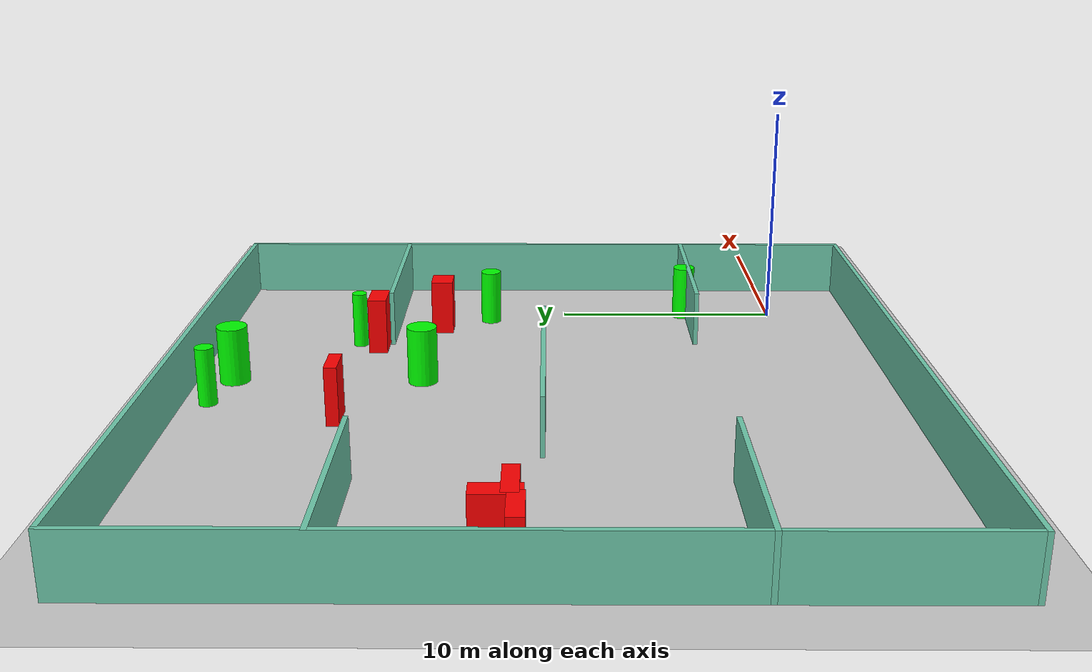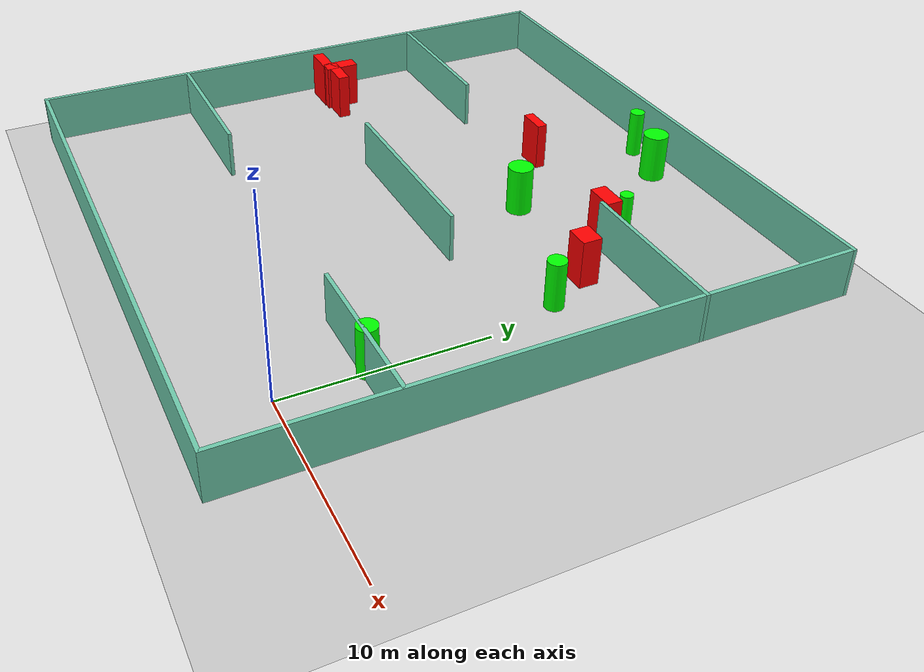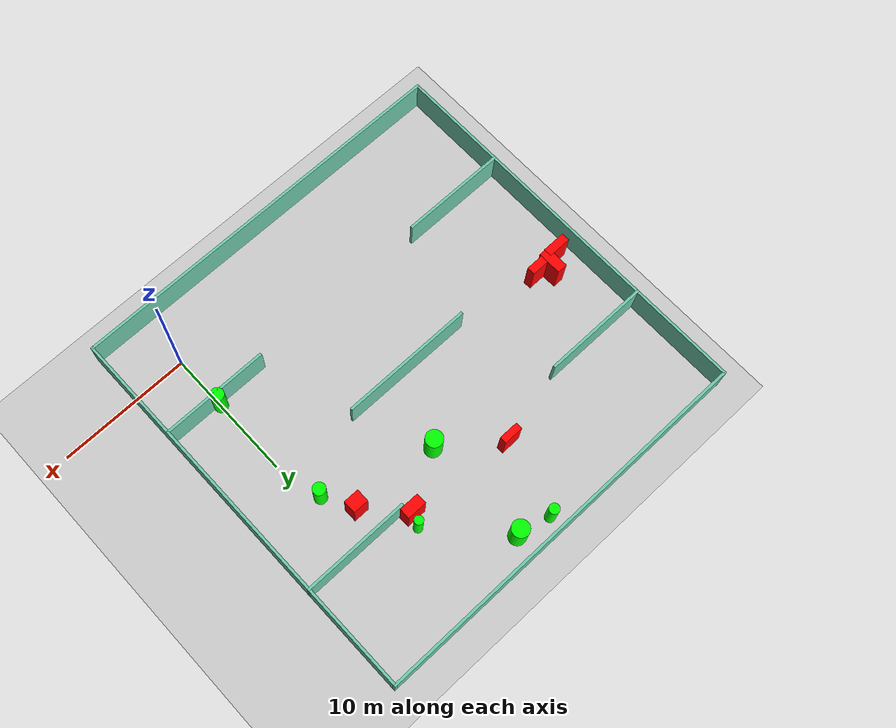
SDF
<sdf version="1.7">
 <world name="default">
  <light name="sun" type="directional">
   <pose>0 0 10 0 -0 0</pose>
   <diffuse>0.8 0.8 0.8 1</diffuse>
   <specular>0.2 0.2 0.2 1</specular>
   <attenuation>
    <range>1000</range>
    <constant>0.9</constant>
    <linear>0.01</linear>
    <quadratic>0.001</quadratic>
   </attenuation>
   <direction>-0.5 0.1 -0.9</direction>
   <spot><inner_angle>0</inner_angle><outer_angle>0</outer_angle><falloff>0</falloff></spot>
  </light>
  <model name="ground_plane">
   <static>1</static>
   <link name="link">
    <collision name="collision">
     <geometry><plane><normal>0 0 1</normal><size>100 100</size></plane></geometry>
     <surface>
      <contact><collide_bitmask>65535</collide_bitmask></contact>
      <friction><ode><mu>100</mu><mu2>50</mu2></ode></friction>
     </surface>
    </collision>
    <visual name="visual">
     <cast_shadows>0</cast_shadows>
     <geometry><plane><normal>0 0 1</normal><size>100 100</size></plane></geometry>
     <material>
      <script><uri>file://media/materials/scripts/gazebo.material</uri><name>Gazebo/Grey</name></script>
     </material>
    </visual>
   </link>
  </model>
  <gravity>0 0 -9.8</gravity>
  <magnetic_field>6e-06 2.3e-05 -4.2e-05</magnetic_field>
  <atmosphere type="adiabatic"/>
  <physics type="ode">
   <max_step_size>0.001</max_step_size>
   <real_time_factor>1</real_time_factor>
   <real_time_update_rate>1000</real_time_update_rate>
  </physics>
  <scene><ambient>0.4 0.4 0.4 1</ambient><background>0.7 0.7 0.7 1</background><shadows>1</shadows></scene>
  <spherical_coordinates>
   <surface_model>EARTH_WGS84</surface_model>
   <latitude_deg>0</latitude_deg>
   <longitude_deg>0</longitude_deg>
   <elevation>0</elevation>
   <heading_deg>0</heading_deg>
  </spherical_coordinates>
  <model name="my_base_walls">
   <link name="Wall_10">
    <collision name="Wall_10_Collision">
     <geometry><box><size>8.2 0.2 2.5</size></box></geometry>
     <pose>0 0 1.25 0 -0 0</pose>
    </collision>
    <visual name="Wall_10_Visual">
     <pose>0 0 1.25 0 -0 0</pose>
     <geometry><box><size>8.2 0.2 2.5</size></box></geometry>
     <material>
      <script><uri>file://media/materials/scripts/gazebo.material</uri><name>Gazebo/Grey</name></script>
      <ambient>0.435294 0.796078 0.67451 1</ambient>
     </material>
     <meta><layer>0</layer></meta>
    </visual>
    <pose>-11 -7 0 0 -0 0</pose>
   </link>
   <link name="Wall_12">
    <collision name="Wall_12_Collision">
     <geometry><box><size>8.2 0.2 2.5</size></box></geometry>
     <pose>0 0 1.25 0 -0 0</pose>
    </collision>
    <visual name="Wall_12_Visual">
     <pose>0 0 1.25 0 -0 0</pose>
     <geometry><box><size>8.2 0.2 2.5</size></box></geometry>
     <material>
      <script><uri>file://media/materials/scripts/gazebo.material</uri><name>Gazebo/Grey</name></script>
      <ambient>0.435294 0.796078 0.67451 1</ambient>
     </material>
     <meta><layer>0</layer></meta>
    </visual>
    <pose>-11 7 0 0 -0 0</pose>
   </link>
   <link name="Wall_14">
    <collision name="Wall_14_Collision">
     <geometry><box><size>8.2 0.2 2.5</size></box></geometry>
     <pose>0 0 1.25 0 -0 0</pose>
    </collision>
    <visual name="Wall_14_Visual">
     <pose>0 0 1.25 0 -0 0</pose>
     <geometry><box><size>8.2 0.2 2.5</size></box></geometry>
     <material>
      <script><uri>file://media/materials/scripts/gazebo.material</uri><name>Gazebo/Grey</name></script>
      <ambient>0.435294 0.796078 0.67451 1</ambient>
     </material>
     <meta><layer>0</layer></meta>
    </visual>
    <pose>11 7 0 0 -0 3.14159</pose>
   </link>
   <link name="Wall_16">
    <collision name="Wall_16_Collision">
     <geometry><box><size>10.2 0.2 2.5</size></box></geometry>
     <pose>0 0 1.25 0 -0 0</pose>
    </collision>
    <visual name="Wall_16_Visual">
     <pose>0 0 1.25 0 -0 0</pose>
     <geometry><box><size>10.2 0.2 2.5</size></box></geometry>
     <material>
      <script><uri>file://media/materials/scripts/gazebo.material</uri><name>Gazebo/Grey</name></script>
      <ambient>0.435294 0.796078 0.67451 1</ambient>
     </material>
     <meta><layer>0</layer></meta>
    </visual>
    <pose>0 0 0 0 -0 3.14159</pose>
   </link>
   <link name="Wall_2">
    <collision name="Wall_2_Collision">
     <geometry><box><size>30.2 0.2 2.5</size></box></geometry>
     <pose>0 0 1.25 0 -0 0</pose>
    </collision>
    <visual name="Wall_2_Visual">
     <pose>0 0 1.25 0 -0 0</pose>
     <geometry><box><size>30.2 0.2 2.5</size></box></geometry>
     <material>
      <script><uri>file://media/materials/scripts/gazebo.material</uri><name>Gazebo/Grey</name></script>
      <ambient>0.435294 0.796078 0.67451 1</ambient>
     </material>
     <meta><layer>0</layer></meta>
    </visual>
    <pose>0 -15 0 0 -0 3.14159</pose>
   </link>
   <link name="Wall_3">
    <collision name="Wall_3_Collision">
     <geometry><box><size>30.2 0.2 2.5</size></box></geometry>
     <pose>0 0 1.25 0 -0 0</pose>
    </collision>
    <visual name="Wall_3_Visual">
     <pose>0 0 1.25 0 -0 0</pose>
     <geometry><box><size>30.2 0.2 2.5</size></box></geometry>
     <material>
      <script><uri>file://media/materials/scripts/gazebo.material</uri><name>Gazebo/Grey</name></script>
      <ambient>0.435294 0.796078 0.67451 1</ambient>
     </material>
     <meta><layer>0</layer></meta>
    </visual>
    <pose>-15 0 0 0 -0 1.5708</pose>
   </link>
   <link name="Wall_4">
    <collision name="Wall_4_Collision">
     <geometry><box><size>30.2 0.2 2.5</size></box></geometry>
     <pose>0 0 1.25 0 -0 0</pose>
    </collision>
    <visual name="Wall_4_Visual">
     <pose>0 0 1.25 0 -0 0</pose>
     <geometry><box><size>30.2 0.2 2.5</size></box></geometry>
     <material>
      <script><uri>file://media/materials/scripts/gazebo.material</uri><name>Gazebo/Grey</name></script>
      <ambient>0.435294 0.796078 0.67451 1</ambient>
     </material>
     <meta><layer>0</layer></meta>
    </visual>
    <pose>0 15 0 0 -0 0</pose>
   </link>
   <link name="Wall_6">
    <collision name="Wall_6_Collision">
     <geometry><box><size>30.2 0.2 2.5</size></box></geometry>
     <pose>0 0 1.25 0 -0 0</pose>
    </collision>
    <visual name="Wall_6_Visual">
     <pose>0 0 1.25 0 -0 0</pose>
     <geometry><box><size>30.2 0.2 2.5</size></box></geometry>
     <material>
      <script><uri>file://media/materials/scripts/gazebo.material</uri><name>Gazebo/Grey</name></script>
      <ambient>0.435294 0.796078 0.67451 1</ambient>
     </material>
     <meta><layer>0</layer></meta>
    </visual>
    <pose>15 0 0 0 -0 1.5708</pose>
   </link>
   <link name="Wall_8">
    <collision name="Wall_8_Collision">
     <geometry><box><size>8.2 0.2 2.5</size></box></geometry>
     <pose>0 0 1.25 0 -0 0</pose>
    </collision>
    <visual name="Wall_8_Visual">
     <pose>0 0 1.25 0 -0 0</pose>
     <geometry><box><size>8.2 0.2 2.5</size></box></geometry>
     <material>
      <script><uri>file://media/materials/scripts/gazebo.material</uri><name>Gazebo/Grey</name></script>
      <ambient>0.435294 0.796078 0.67451 1</ambient>
     </material>
     <meta><layer>0</layer></meta>
    </visual>
    <pose>11 -7 0 0 -0 3.14159</pose>
   </link>
   <static>1</static>
   <pose>-11 11 0 0 -0 0</pose>
  </model>
  <model name="cylinder1">
   <static>1</static>
   <link name="link">
    <inertial>
     <mass>1</mass>
     <inertia><ixx>0.5</ixx><ixy>0</ixy><ixz>0</ixz><iyy>0.5</iyy><iyz>0</iyz><izz>1</izz></inertia>
    </inertial>
    <collision name="collision">
     <geometry><cylinder><radius>0.3835383664872385</radius><length>2.5</length></cylinder></geometry>
    </collision>
    <visual name="visual">
     <geometry><cylinder><radius>0.3835383664872385</radius><length>2.5</length></cylinder></geometry>
     <material>
      <ambient>0 1 0 1</ambient>
      <diffuse>0 1 0 1</diffuse>
      <specular>0.1 0.1 0.1 1</specular>
      <emissive>0 0 0 0</emissive>
     </material>
    </visual>
   </link>
   <pose>-11.053012367505957 24.831752047977997 1.25 0 0 0</pose>
  </model>
  <model name="cylinder2">
   <static>1</static>
   <link name="link">
    <inertial>
     <mass>1</mass>
     <inertia><ixx>0.5</ixx><ixy>0</ixy><ixz>0</ixz><iyy>0.5</iyy><iyz>0</iyz><izz>1</izz></inertia>
    </inertial>
    <collision name="collision">
     <geometry><cylinder><radius>0.46906239113513826</radius><length>2.5</length></cylinder></geometry>
    </collision>
    <visual name="visual">
     <geometry><cylinder><radius>0.46906239113513826</radius><length>2.5</length></cylinder></geometry>
     <material>
      <ambient>0 1 0 1</ambient>
      <diffuse>0 1 0 1</diffuse>
      <specular>0.1 0.1 0.1 1</specular>
      <emissive>0 0 0 0</emissive>
     </material>
    </visual>
   </link>
   <pose>-0.778890654105993 13.587081472727593 1.25 0 0 0</pose>
  </model>
  <model name="cylinder3">
   <static>1</static>
   <link name="link">
    <inertial>
     <mass>1</mass>
     <inertia><ixx>0.5</ixx><ixy>0</ixy><ixz>0</ixz><iyy>0.5</iyy><iyz>0</iyz><izz>1</izz></inertia>
    </inertial>
    <collision name="collision">
     <geometry><cylinder><radius>0.3315334234077897</radius><length>2.5</length></cylinder></geometry>
    </collision>
    <visual name="visual">
     <geometry><cylinder><radius>0.3315334234077897</radius><length>2.5</length></cylinder></geometry>
     <material>
      <ambient>0 1 0 1</ambient>
      <diffuse>0 1 0 1</diffuse>
      <specular>0.1 0.1 0.1 1</specular>
      <emissive>0 0 0 0</emissive>
     </material>
    </visual>
   </link>
   <pose>-4.121655644753989 19.470945972269973 1.25 0 0 0</pose>
  </model>
  <model name="cylinder4">
   <static>1</static>
   <link name="link">
    <inertial>
     <mass>1</mass>
     <inertia><ixx>0.5</ixx><ixy>0</ixy><ixz>0</ixz><iyy>0.5</iyy><iyz>0</iyz><izz>1</izz></inertia>
    </inertial>
    <collision name="collision">
     <geometry><cylinder><radius>0.5039261697235827</radius><length>2.5</length></cylinder></geometry>
    </collision>
    <visual name="visual">
     <geometry><cylinder><radius>0.5039261697235827</radius><length>2.5</length></cylinder></geometry>
     <material>
      <ambient>0 1 0 1</ambient>
      <diffuse>0 1 0 1</diffuse>
      <specular>0.1 0.1 0.1 1</specular>
      <emissive>0 0 0 0</emissive>
     </material>
    </visual>
   </link>
   <pose>-0.05069540430286068 4.1920841065038745 1.25 0 0 0</pose>
  </model>
  <model name="cylinder5">
   <static>1</static>
   <link name="link">
    <inertial>
     <mass>1</mass>
     <inertia><ixx>0.5</ixx><ixy>0</ixy><ixz>0</ixz><iyy>0.5</iyy><iyz>0</iyz><izz>1</izz></inertia>
    </inertial>
    <collision name="collision">
     <geometry><cylinder><radius>0.646880387973763</radius><length>2.5</length></cylinder></geometry>
    </collision>
    <visual name="visual">
     <geometry><cylinder><radius>0.646880387973763</radius><length>2.5</length></cylinder></geometry>
     <material>
      <ambient>0 1 0 1</ambient>
      <diffuse>0 1 0 1</diffuse>
      <specular>0.1 0.1 0.1 1</specular>
      <emissive>0 0 0 0</emissive>
     </material>
    </visual>
   </link>
   <pose>-8.558299794164784 24.288583122318077 1.25 0 0 0</pose>
  </model>
  <model name="cylinder6">
   <static>1</static>
   <link name="link">
    <inertial>
     <mass>1</mass>
     <inertia><ixx>0.5</ixx><ixy>0</ixy><ixz>0</ixz><iyy>0.5</iyy><iyz>0</iyz><izz>1</izz></inertia>
    </inertial>
    <collision name="collision">
     <geometry><cylinder><radius>0.6411375692822873</radius><length>2.5</length></cylinder></geometry>
    </collision>
    <visual name="visual">
     <geometry><cylinder><radius>0.6411375692822873</radius><length>2.5</length></cylinder></geometry>
     <material>
      <ambient>0 1 0 1</ambient>
      <diffuse>0 1 0 1</diffuse>
      <specular>0.1 0.1 0.1 1</specular>
      <emissive>0 0 0 0</emissive>
     </material>
    </visual>
   </link>
   <pose>-8.586902332414251 16.186902800795405 1.25 0 0 0</pose>
  </model>
  <model name="box1">
   <static>1</static>
   <link name="link">
    <inertial>
     <mass>1</mass>
     <inertia><ixx>0.083</ixx><ixy>0</ixy><ixz>0</ixz><iyy>0.083</iyy><iyz>0</iyz><izz>0.083</izz></inertia>
    </inertial>
    <collision name="collision">
     <geometry><box><size>1.4848970300193989 0.5250060736917984 2.5</size></box></geometry>
    </collision>
    <visual name="visual">
     <geometry><box><size>1.4848970300193989 0.5250060736917984 2.5</size></box></geometry>
     <material>
      <ambient>1 0 0 1</ambient>
      <diffuse>1 0 0 1</diffuse>
      <specular>0.1 0.1 0.1 1</specular>
      <emissive>0 0 0 0</emissive>
     </material>
    </visual>
    <sensor name="my_contact" type="contact">
     <contact><collision>box_collision</collision><topic>__default_topic__</topic></contact>
    </sensor>
   </link>
   <pose>-12.558413106659206 19.33062075674702 1.25 0 0 0</pose>
  </model>
  <model name="box2">
   <static>1</static>
   <link name="link">
    <inertial>
     <mass>1</mass>
     <inertia><ixx>0.083</ixx><ixy>0</ixy><ixz>0</ixz><iyy>0.083</iyy><iyz>0</iyz><izz>0.083</izz></inertia>
    </inertial>
    <collision name="collision">
     <geometry><box><size>1.1828384677085728 0.9930279874704276 2.5</size></box></geometry>
    </collision>
    <visual name="visual">
     <geometry><box><size>1.1828384677085728 0.9930279874704276 2.5</size></box></geometry>
     <material>
      <ambient>1 0 0 1</ambient>
      <diffuse>1 0 0 1</diffuse>
      <specular>0.1 0.1 0.1 1</specular>
      <emissive>0 0 0 0</emissive>
     </material>
    </visual>
    <sensor name="my_contact" type="contact">
     <contact><collision>box_collision</collision><topic>__default_topic__</topic></contact>
    </sensor>
   </link>
   <pose>-1.988680331280836 15.81667161827842 1.25 0 0 0</pose>
  </model>
  <model name="box3">
   <static>1</static>
   <link name="link">
    <inertial>
     <mass>1</mass>
     <inertia><ixx>0.083</ixx><ixy>0</ixy><ixz>0</ixz><iyy>0.083</iyy><iyz>0</iyz><izz>0.083</izz></inertia>
    </inertial>
    <collision name="collision">
     <geometry><box><size>2.00974110563259 0.611263426648955 2.5</size></box></geometry>
    </collision>
    <visual name="visual">
     <geometry><box><size>2.00974110563259 0.611263426648955 2.5</size></box></geometry>
     <material>
      <ambient>1 0 0 1</ambient>
      <diffuse>1 0 0 1</diffuse>
      <specular>0.1 0.1 0.1 1</specular>
      <emissive>0 0 0 0</emissive>
     </material>
    </visual>
    <sensor name="my_contact" type="contact">
     <contact><collision>box_collision</collision><topic>__default_topic__</topic></contact>
    </sensor>
   </link>
   <pose>-22.700217479525076 11.991815534056219 1.25 0 0 0</pose>
  </model>
  <model name="box4">
   <static>1</static>
   <link name="link">
    <inertial>
     <mass>1</mass>
     <inertia><ixx>0.083</ixx><ixy>0</ixy><ixz>0</ixz><iyy>0.083</iyy><iyz>0</iyz><izz>0.083</izz></inertia>
    </inertial>
    <collision name="collision">
     <geometry><box><size>1.51473176539593 0.8255819703817351 2.5</size></box></geometry>
    </collision>
    <visual name="visual">
     <geometry><box><size>1.51473176539593 0.8255819703817351 2.5</size></box></geometry>
     <material>
      <ambient>1 0 0 1</ambient>
      <diffuse>1 0 0 1</diffuse>
      <specular>0.1 0.1 0.1 1</specular>
      <emissive>0 0 0 0</emissive>
     </material>
    </visual>
    <sensor name="my_contact" type="contact">
     <contact><collision>box_collision</collision><topic>__default_topic__</topic></contact>
    </sensor>
   </link>
   <pose>-4.475028559520524 18.54191988997635 1.25 0 0 0</pose>
  </model>
  <model name="box5">
   <static>1</static>
   <link name="link">
    <inertial>
     <mass>1</mass>
     <inertia><ixx>0.083</ixx><ixy>0</ixy><ixz>0</ixz><iyy>0.083</iyy><iyz>0</iyz><izz>0.083</izz></inertia>
    </inertial>
    <collision name="collision">
     <geometry><box><size>1.7906067651268207 0.6206230321327895 2.5</size></box></geometry>
    </collision>
    <visual name="visual">
     <geometry><box><size>1.7906067651268207 0.6206230321327895 2.5</size></box></geometry>
     <material>
      <ambient>1 0 0 1</ambient>
      <diffuse>1 0 0 1</diffuse>
      <specular>0.1 0.1 0.1 1</specular>
      <emissive>0 0 0 0</emissive>
     </material>
    </visual>
    <sensor name="my_contact" type="contact">
     <contact><collision>box_collision</collision><topic>__default_topic__</topic></contact>
    </sensor>
   </link>
   <pose>-24.415226064033586 11.787899454096722 1.25 0 0 0</pose>
  </model>
  <model name="box6">
   <static>1</static>
   <link name="link">
    <inertial>
     <mass>1</mass>
     <inertia><ixx>0.083</ixx><ixy>0</ixy><ixz>0</ixz><iyy>0.083</iyy><iyz>0</iyz><izz>0.083</izz></inertia>
    </inertial>
    <collision name="collision">
     <geometry><box><size>0.7947638829655747 1.8164136909350628 2.5</size></box></geometry>
    </collision>
    <visual name="visual">
     <geometry><box><size>0.7947638829655747 1.8164136909350628 2.5</size></box></geometry>
     <material>
      <ambient>1 0 0 1</ambient>
      <diffuse>1 0 0 1</diffuse>
      <specular>0.1 0.1 0.1 1</specular>
      <emissive>0 0 0 0</emissive>
     </material>
    </visual>
    <sensor name="my_contact" type="contact">
     <contact><collision>box_collision</collision><topic>__default_topic__</topic></contact>
    </sensor>
   </link>
   <pose>-23.43018584149707 12.43643030603944 1.25 0 0 0</pose>
  </model>
 </world>
</sdf>
